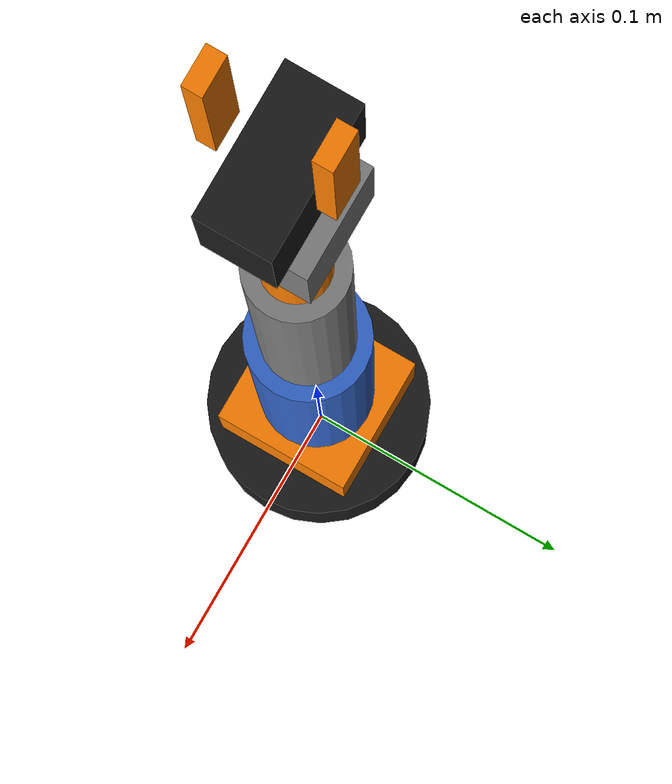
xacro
<?xml version="1.0"?>
<robot xmlns:xacro="http://www.ros.org/wiki/xacro" name="mark_five_arm">

  <!-- URDF Properties - Customize These!        -->
  <!-- Measure your actual arm and update these values -->

  <xacro:property name="base_height" value="0.05" />
  <xacro:property name="base_radius" value="0.04" />

  <xacro:property name="shoulder_length" value="0.15" />
  <xacro:property name="shoulder_radius" value="0.02" />

  <xacro:property name="elbow_length" value="0.15" />
  <xacro:property name="elbow_radius" value="0.015" />

  <xacro:property name="wrist_length" value="0.08" />
  <xacro:property name="wrist_radius" value="0.01" />

  <xacro:property name="gripper_length" value="0.06" />
  <xacro:property name="gripper_width" value="0.03" />

  <!-- Joint limits (match config/arm_params.yaml) -->
  <xacro:property name="base_limit" value="1.5708" />
  <xacro:property name="shoulder_limit" value="1.5708" />
  <xacro:property name="elbow_limit" value="1.5708" />
  <xacro:property name="wrist_pitch_limit" value="1.5708" />
  <xacro:property name="wrist_roll_limit" value="1.5708" />
  <xacro:property name="gripper_limit" value="1.0472" />

  <!-- Material Definitions                      -->

  <material name="black">
    <color rgba="0.1 0.1 0.1 1.0"/>
  </material>

  <material name="orange">
    <color rgba="1.0 0.5 0.0 1.0"/>
  </material>

  <material name="gray">
    <color rgba="0.5 0.5 0.5 1.0"/>
  </material>

  <material name="blue">
    <color rgba="0.2 0.4 0.8 1.0"/>
  </material>

  <!-- Macro for Cylinder Links                  -->

  <xacro:macro name="cylinder_link" params="name length radius material">
    <link name="${name}">
      <visual>
        <origin xyz="0 0 ${length/2}" rpy="0 0 0"/>
        <geometry>
          <cylinder length="${length}" radius="${radius}"/>
        </geometry>
        <material name="${material}"/>
      </visual>
      <collision>
        <origin xyz="0 0 ${length/2}" rpy="0 0 0"/>
        <geometry>
          <cylinder length="${length}" radius="${radius}"/>
        </geometry>
      </collision>
      <inertial>
        <origin xyz="0 0 ${length/2}" rpy="0 0 0"/>
        <mass value="0.1"/>
        <inertia ixx="0.0001" ixy="0.0" ixz="0.0"
                 iyy="0.0001" iyz="0.0" izz="0.0001"/>
      </inertial>
    </link>
  </xacro:macro>

  <!-- Base Link (Fixed to Ground)               -->

  <link name="arm_base_link">
    <visual>
      <origin xyz="0 0 ${base_height/2}" rpy="0 0 0"/>
      <geometry>
        <cylinder length="${base_height}" radius="${base_radius}"/>
      </geometry>
      <material name="black"/>
    </visual>
    <collision>
      <origin xyz="0 0 ${base_height/2}" rpy="0 0 0"/>
      <geometry>
        <cylinder length="${base_height}" radius="${base_radius}"/>
      </geometry>
    </collision>
    <inertial>
      <origin xyz="0 0 ${base_height/2}" rpy="0 0 0"/>
      <mass value="0.5"/>
      <inertia ixx="0.001" ixy="0.0" ixz="0.0"
               iyy="0.001" iyz="0.0" izz="0.001"/>
    </inertial>
  </link>

  <!-- Joint 1: Base Rotation (around Z axis)    -->

  <link name="base_rotate_link">
    <visual>
      <origin xyz="0 0 0.02" rpy="0 0 0"/>
      <geometry>
        <box size="0.05 0.05 0.04"/>
      </geometry>
      <material name="orange"/>
    </visual>
    <collision>
      <origin xyz="0 0 0.02" rpy="0 0 0"/>
      <geometry>
        <box size="0.05 0.05 0.04"/>
      </geometry>
    </collision>
    <inertial>
      <origin xyz="0 0 0.02" rpy="0 0 0"/>
      <mass value="0.2"/>
      <inertia ixx="0.0001" ixy="0.0" ixz="0.0"
               iyy="0.0001" iyz="0.0" izz="0.0001"/>
    </inertial>
  </link>

  <joint name="base" type="revolute">
    <parent link="arm_base_link"/>
    <child link="base_rotate_link"/>
    <origin xyz="0 0 ${base_height}" rpy="0 0 0"/>
    <axis xyz="0 0 1"/>
    <limit lower="${-base_limit}" upper="${base_limit}" effort="10" velocity="1.0"/>
  </joint>

  <!-- Joint 2: Shoulder (around Y axis)         -->

  <xacro:cylinder_link name="shoulder_link"
                       length="${shoulder_length}"
                       radius="${shoulder_radius}"
                       material="blue"/>

  <joint name="shoulder" type="revolute">
    <parent link="base_rotate_link"/>
    <child link="shoulder_link"/>
    <origin xyz="0 0 0.04" rpy="0 0 0"/>
    <axis xyz="0 1 0"/>
    <limit lower="${-shoulder_limit}" upper="${shoulder_limit}" effort="10" velocity="1.0"/>
  </joint>

  <!-- Joint 3: Elbow (around Y axis)            -->

  <xacro:cylinder_link name="elbow_link"
                       length="${elbow_length}"
                       radius="${elbow_radius}"
                       material="gray"/>

  <joint name="elbow" type="revolute">
    <parent link="shoulder_link"/>
    <child link="elbow_link"/>
    <origin xyz="0 0 ${shoulder_length}" rpy="0 0 0"/>
    <axis xyz="0 1 0"/>
    <limit lower="${-elbow_limit}" upper="${elbow_limit}" effort="10" velocity="1.0"/>
  </joint>

  <!-- Joint 4: Wrist Pitch (around Y axis)      -->

  <xacro:cylinder_link name="wrist_pitch_link"
                       length="${wrist_length}"
                       radius="${wrist_radius}"
                       material="orange"/>

  <joint name="wrist_pitch" type="revolute">
    <parent link="elbow_link"/>
    <child link="wrist_pitch_link"/>
    <origin xyz="0 0 ${elbow_length}" rpy="0 0 0"/>
    <axis xyz="0 1 0"/>
    <limit lower="${-wrist_pitch_limit}" upper="${wrist_pitch_limit}" effort="5" velocity="1.0"/>
  </joint>

  <!-- Joint 5: Wrist Roll (around Z axis)       -->

  <link name="wrist_roll_link">
    <visual>
      <origin xyz="0 0 0.02" rpy="0 0 0"/>
      <geometry>
        <box size="0.03 0.03 0.04"/>
      </geometry>
      <material name="gray"/>
    </visual>
    <collision>
      <origin xyz="0 0 0.02" rpy="0 0 0"/>
      <geometry>
        <box size="0.03 0.03 0.04"/>
      </geometry>
    </collision>
    <inertial>
      <origin xyz="0 0 0.02" rpy="0 0 0"/>
      <mass value="0.05"/>
      <inertia ixx="0.00001" ixy="0.0" ixz="0.0"
               iyy="0.00001" iyz="0.0" izz="0.00001"/>
    </inertial>
  </link>

  <joint name="wrist_roll" type="revolute">
    <parent link="wrist_pitch_link"/>
    <child link="wrist_roll_link"/>
    <origin xyz="0 0 ${wrist_length}" rpy="0 0 0"/>
    <axis xyz="0 0 1"/>
    <limit lower="${-wrist_roll_limit}" upper="${wrist_roll_limit}" effort="5" velocity="1.0"/>
  </joint>

  <!-- Joint 6: Gripper (prismatic approximation)-->

  <link name="gripper_base_link">
    <visual>
      <origin xyz="0 0 0.02" rpy="0 0 0"/>
      <geometry>
        <box size="0.04 0.02 0.04"/>
      </geometry>
      <material name="black"/>
    </visual>
    <collision>
      <origin xyz="0 0 0.02" rpy="0 0 0"/>
      <geometry>
        <box size="0.04 0.02 0.04"/>
      </geometry>
    </collision>
    <inertial>
      <origin xyz="0 0 0.02" rpy="0 0 0"/>
      <mass value="0.05"/>
      <inertia ixx="0.00001" ixy="0.0" ixz="0.0"
               iyy="0.00001" iyz="0.0" izz="0.00001"/>
    </inertial>
  </link>

  <joint name="gripper" type="revolute">
    <parent link="wrist_roll_link"/>
    <child link="gripper_base_link"/>
    <origin xyz="0 0 0.04" rpy="0 0 0"/>
    <axis xyz="0 1 0"/>
    <limit lower="0.0" upper="${gripper_limit}" effort="5" velocity="1.0"/>
  </joint>

  <!-- Gripper fingers (visual only) -->
  <link name="gripper_left_finger">
    <visual>
      <origin xyz="0 ${gripper_width/2} ${gripper_length/2}" rpy="0 0 0"/>
      <geometry>
        <box size="0.01 0.005 ${gripper_length}"/>
      </geometry>
      <material name="orange"/>
    </visual>
  </link>

  <link name="gripper_right_finger">
    <visual>
      <origin xyz="0 ${-gripper_width/2} ${gripper_length/2}" rpy="0 0 0"/>
      <geometry>
        <box size="0.01 0.005 ${gripper_length}"/>
      </geometry>
      <material name="orange"/>
    </visual>
  </link>

  <joint name="gripper_left_finger_joint" type="fixed">
    <parent link="gripper_base_link"/>
    <child link="gripper_left_finger"/>
    <origin xyz="0 0 0.04" rpy="0 0 0"/>
  </joint>

  <joint name="gripper_right_finger_joint" type="fixed">
    <parent link="gripper_base_link"/>
    <child link="gripper_right_finger"/>
    <origin xyz="0 0 0.04" rpy="0 0 0"/>
  </joint>

  <!-- End effector frame -->
  <link name="end_effector_link"/>

  <joint name="end_effector_joint" type="fixed">
    <parent link="gripper_base_link"/>
    <child link="end_effector_link"/>
    <origin xyz="0 0 ${0.04 + gripper_length}" rpy="0 0 0"/>
  </joint>

</robot>
